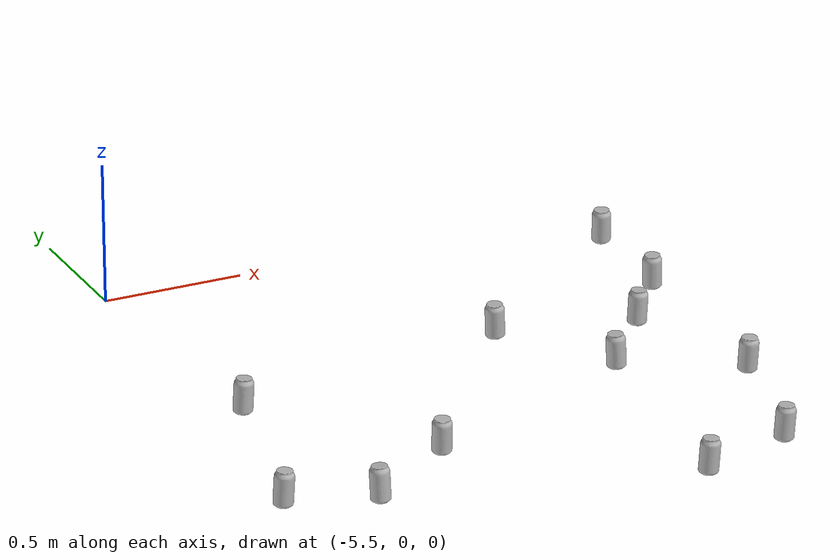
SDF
<sdf version="1.6">
 <world name="default">
  <model name="coke_can77">
   <link name="link">
    <inertial>
     <pose>0 0 0.06 0 -0 0</pose>
     <mass>0.39</mass>
     <inertia>
      <ixx>0.00055575</ixx>
      <ixy>0</ixy>
      <ixz>0</ixz>
      <iyy>0.00055575</iyy>
      <iyz>0</iyz>
      <izz>0.0001755</izz>
     </inertia>
    </inertial>
    <collision name="collision">
     <pose>0.003937 0.004724 -0.18 0 -0 0</pose>
     <geometry><mesh><uri>model://coke_can/meshes/coke_can.dae</uri></mesh></geometry>
     <surface>
      <friction><ode><mu>1</mu><mu2>1</mu2></ode></friction>
      <contact>
       <ode><kp>1e+07</kp><kd>1</kd><min_depth>0.001</min_depth><max_vel>0.1</max_vel></ode>
       <collide_bitmask>256</collide_bitmask>
      </contact>
     </surface>
    </collision>
    <visual name="visual">
     <pose>0.003937 0.004724 -0.18 0 -0 0</pose>
     <geometry><mesh><uri>model://coke_can/meshes/coke_can.dae</uri></mesh></geometry>
    </visual>
   </link>
   <pose>-3.95375 -1.9477 -0.002659 -0.0551 0.00775 -1.79287</pose>
  </model>
  <model name="coke_can95">
   <link name="link">
    <inertial>
     <pose>0 0 0.06 0 -0 0</pose>
     <mass>0.39</mass>
     <inertia>
      <ixx>0.00055575</ixx>
      <ixy>0</ixy>
      <ixz>0</ixz>
      <iyy>0.00055575</iyy>
      <iyz>0</iyz>
      <izz>0.0001755</izz>
     </inertia>
    </inertial>
    <collision name="collision">
     <pose>0.003937 0.004724 -0.18 0 -0 0</pose>
     <geometry><mesh><uri>model://coke_can/meshes/coke_can.dae</uri></mesh></geometry>
     <surface>
      <friction><ode><mu>1</mu><mu2>1</mu2></ode></friction>
      <contact>
       <ode><kp>1e+07</kp><kd>1</kd><min_depth>0.001</min_depth><max_vel>0.1</max_vel></ode>
       <collide_bitmask>256</collide_bitmask>
      </contact>
     </surface>
    </collision>
    <visual name="visual">
     <pose>0.003937 0.004724 -0.18 0 -0 0</pose>
     <geometry><mesh><uri>model://coke_can/meshes/coke_can.dae</uri></mesh></geometry>
    </visual>
   </link>
   <pose>-3.95635 -0.945213 -0.002659 -0.05513 0.007728 -1.19313</pose>
  </model>
  <model name="coke_can151">
   <link name="link">
    <inertial>
     <pose>0 0 0.06 0 -0 0</pose>
     <mass>0.39</mass>
     <inertia>
      <ixx>0.00055575</ixx>
      <ixy>0</ixy>
      <ixz>0</ixz>
      <iyy>0.00055575</iyy>
      <iyz>0</iyz>
      <izz>0.0001755</izz>
     </inertia>
    </inertial>
    <collision name="collision">
     <pose>0.003937 0.004724 -0.18 0 -0 0</pose>
     <geometry><mesh><uri>model://coke_can/meshes/coke_can.dae</uri></mesh></geometry>
     <surface>
      <friction><ode><mu>1</mu><mu2>1</mu2></ode></friction>
      <contact>
       <ode><kp>1e+07</kp><kd>1</kd><min_depth>0.001</min_depth><max_vel>0.1</max_vel></ode>
       <collide_bitmask>256</collide_bitmask>
      </contact>
     </surface>
    </collision>
    <visual name="visual">
     <pose>0.003937 0.004724 -0.18 0 -0 0</pose>
     <geometry><mesh><uri>model://coke_can/meshes/coke_can.dae</uri></mesh></geometry>
    </visual>
   </link>
   <pose>-5.60588 -1.68511 -0.002659 -0.055097 0.007752 -1.87692</pose>
  </model>
  <model name="coke_can315">
   <link name="link">
    <inertial>
     <pose>0 0 0.06 0 -0 0</pose>
     <mass>0.39</mass>
     <inertia>
      <ixx>0.00055575</ixx>
      <ixy>0</ixy>
      <ixz>0</ixz>
      <iyy>0.00055575</iyy>
      <iyz>0</iyz>
      <izz>0.0001755</izz>
     </inertia>
    </inertial>
    <collision name="collision">
     <pose>0.003937 0.004724 -0.18 0 -0 0</pose>
     <geometry><mesh><uri>model://coke_can/meshes/coke_can.dae</uri></mesh></geometry>
     <surface>
      <friction><ode><mu>1</mu><mu2>1</mu2></ode></friction>
      <contact>
       <ode><kp>1e+07</kp><kd>1</kd><min_depth>0.001</min_depth><max_vel>0.1</max_vel></ode>
       <collide_bitmask>256</collide_bitmask>
      </contact>
     </surface>
    </collision>
    <visual name="visual">
     <pose>0.003937 0.004724 -0.18 0 -0 0</pose>
     <geometry><mesh><uri>model://coke_can/meshes/coke_can.dae</uri></mesh></geometry>
    </visual>
   </link>
   <pose>-5.3153 -1.78877 -0.002659 -0.055107 0.007745 0.767916</pose>
  </model>
  <model name="coke_can325">
   <link name="link">
    <inertial>
     <pose>0 0 0.06 0 -0 0</pose>
     <mass>0.39</mass>
     <inertia>
      <ixx>0.00055575</ixx>
      <ixy>0</ixy>
      <ixz>0</ixz>
      <iyy>0.00055575</iyy>
      <iyz>0</iyz>
      <izz>0.0001755</izz>
     </inertia>
    </inertial>
    <collision name="collision">
     <pose>0.003937 0.004724 -0.18 0 -0 0</pose>
     <geometry><mesh><uri>model://coke_can/meshes/coke_can.dae</uri></mesh></geometry>
     <surface>
      <friction><ode><mu>1</mu><mu2>1</mu2></ode></friction>
      <contact>
       <ode><kp>1e+07</kp><kd>1</kd><min_depth>0.001</min_depth><max_vel>0.1</max_vel></ode>
       <collide_bitmask>256</collide_bitmask>
      </contact>
     </surface>
    </collision>
    <visual name="visual">
     <pose>0.003937 0.004724 -0.18 0 -0 0</pose>
     <geometry><mesh><uri>model://coke_can/meshes/coke_can.dae</uri></mesh></geometry>
    </visual>
   </link>
   <pose>-5.44058 -1.00856 -0.002659 -0.055127 0.007732 -1.43768</pose>
  </model>
  <model name="coke_can385">
   <link name="link">
    <inertial>
     <pose>0 0 0.06 0 -0 0</pose>
     <mass>0.39</mass>
     <inertia>
      <ixx>0.00055575</ixx>
      <ixy>0</ixy>
      <ixz>0</ixz>
      <iyy>0.00055575</iyy>
      <iyz>0</iyz>
      <izz>0.0001755</izz>
     </inertia>
    </inertial>
    <collision name="collision">
     <pose>0.003937 0.004724 -0.18 0 -0 0</pose>
     <geometry><mesh><uri>model://coke_can/meshes/coke_can.dae</uri></mesh></geometry>
     <surface>
      <friction><ode><mu>1</mu><mu2>1</mu2></ode></friction>
      <contact>
       <ode><kp>1e+07</kp><kd>1</kd><min_depth>0.001</min_depth><max_vel>0.1</max_vel></ode>
       <collide_bitmask>256</collide_bitmask>
      </contact>
     </surface>
    </collision>
    <visual name="visual">
     <pose>0.003937 0.004724 -0.18 0 -0 0</pose>
     <geometry><mesh><uri>model://coke_can/meshes/coke_can.dae</uri></mesh></geometry>
    </visual>
   </link>
   <pose>-4.29042 -2.05781 -0.002659 -0.055101 0.007749 -1.76946</pose>
  </model>
  <model name="coke_can425">
   <link name="link">
    <inertial>
     <pose>0 0 0.06 0 -0 0</pose>
     <mass>0.39</mass>
     <inertia>
      <ixx>0.00055575</ixx>
      <ixy>0</ixy>
      <ixz>0</ixz>
      <iyy>0.00055575</iyy>
      <iyz>0</iyz>
      <izz>0.0001755</izz>
     </inertia>
    </inertial>
    <collision name="collision">
     <pose>0.003937 0.004724 -0.18 0 -0 0</pose>
     <geometry><mesh><uri>model://coke_can/meshes/coke_can.dae</uri></mesh></geometry>
     <surface>
      <friction><ode><mu>1</mu><mu2>1</mu2></ode></friction>
      <contact>
       <ode><kp>1e+07</kp><kd>1</kd><min_depth>0.001</min_depth><max_vel>0.1</max_vel></ode>
       <collide_bitmask>256</collide_bitmask>
      </contact>
     </surface>
    </collision>
    <visual name="visual">
     <pose>0.003937 0.004724 -0.18 0 -0 0</pose>
     <geometry><mesh><uri>model://coke_can/meshes/coke_can.dae</uri></mesh></geometry>
    </visual>
   </link>
   <pose>-3.74371 -0.278277 -0.002659 -0.055087 0.007758 2.79999</pose>
  </model>
  <model name="coke_can524">
   <link name="link">
    <inertial>
     <pose>0 0 0.06 0 -0 0</pose>
     <mass>0.39</mass>
     <inertia>
      <ixx>0.00055575</ixx>
      <ixy>0</ixy>
      <ixz>0</ixz>
      <iyy>0.00055575</iyy>
      <iyz>0</iyz>
      <izz>0.0001755</izz>
     </inertia>
    </inertial>
    <collision name="collision">
     <pose>0.003937 0.004724 -0.18 0 -0 0</pose>
     <geometry><mesh><uri>model://coke_can/meshes/coke_can.dae</uri></mesh></geometry>
     <surface>
      <friction><ode><mu>1</mu><mu2>1</mu2></ode></friction>
      <contact>
       <ode><kp>1e+07</kp><kd>1</kd><min_depth>0.001</min_depth><max_vel>0.1</max_vel></ode>
       <collide_bitmask>256</collide_bitmask>
      </contact>
     </surface>
    </collision>
    <visual name="visual">
     <pose>0.003937 0.004724 -0.18 0 -0 0</pose>
     <geometry><mesh><uri>model://coke_can/meshes/coke_can.dae</uri></mesh></geometry>
    </visual>
   </link>
   <pose>-4.98907 -1.55652 -0.002659 -0.055108 0.007745 3.0601</pose>
  </model>
  <model name="coke_can587">
   <link name="link">
    <inertial>
     <pose>0 0 0.06 0 -0 0</pose>
     <mass>0.39</mass>
     <inertia>
      <ixx>0.00055575</ixx>
      <ixy>0</ixy>
      <ixz>0</ixz>
      <iyy>0.00055575</iyy>
      <iyz>0</iyz>
      <izz>0.0001755</izz>
     </inertia>
    </inertial>
    <collision name="collision">
     <pose>0.003937 0.004724 -0.18 0 -0 0</pose>
     <geometry><mesh><uri>model://coke_can/meshes/coke_can.dae</uri></mesh></geometry>
     <surface>
      <friction><ode><mu>1</mu><mu2>1</mu2></ode></friction>
      <contact>
       <ode><kp>1e+07</kp><kd>1</kd><min_depth>0.001</min_depth><max_vel>0.1</max_vel></ode>
       <collide_bitmask>256</collide_bitmask>
      </contact>
     </surface>
    </collision>
    <visual name="visual">
     <pose>0.003937 0.004724 -0.18 0 -0 0</pose>
     <geometry><mesh><uri>model://coke_can/meshes/coke_can.dae</uri></mesh></geometry>
    </visual>
   </link>
   <pose>-3.80392 -1.43548 -0.002659 -0.055113 0.00774 -2.44594</pose>
  </model>
  <model name="coke_can766">
   <link name="link">
    <inertial>
     <pose>0 0 0.06 0 -0 0</pose>
     <mass>0.39</mass>
     <inertia>
      <ixx>0.00055575</ixx>
      <ixy>0</ixy>
      <ixz>0</ixz>
      <iyy>0.00055575</iyy>
      <iyz>0</iyz>
      <izz>0.0001755</izz>
     </inertia>
    </inertial>
    <collision name="collision">
     <pose>0.003937 0.004724 -0.18 0 -0 0</pose>
     <geometry><mesh><uri>model://coke_can/meshes/coke_can.dae</uri></mesh></geometry>
     <surface>
      <friction><ode><mu>1</mu><mu2>1</mu2></ode></friction>
      <contact>
       <ode><kp>1e+07</kp><kd>1</kd><min_depth>0.001</min_depth><max_vel>0.1</max_vel></ode>
       <collide_bitmask>256</collide_bitmask>
      </contact>
     </surface>
    </collision>
    <visual name="visual">
     <pose>0.003937 0.004724 -0.18 0 -0 0</pose>
     <geometry><mesh><uri>model://coke_can/meshes/coke_can.dae</uri></mesh></geometry>
    </visual>
   </link>
   <pose>-3.76792 -0.700042 -0.002658 -0.055082 0.007762 2.56554</pose>
  </model>
  <model name="coke_can828">
   <link name="link">
    <inertial>
     <pose>0 0 0.06 0 -0 0</pose>
     <mass>0.39</mass>
     <inertia>
      <ixx>0.00055575</ixx>
      <ixy>0</ixy>
      <ixz>0</ixz>
      <iyy>0.00055575</iyy>
      <iyz>0</iyz>
      <izz>0.0001755</izz>
     </inertia>
    </inertial>
    <collision name="collision">
     <pose>0.003937 0.004724 -0.18 0 -0 0</pose>
     <geometry><mesh><uri>model://coke_can/meshes/coke_can.dae</uri></mesh></geometry>
     <surface>
      <friction><ode><mu>1</mu><mu2>1</mu2></ode></friction>
      <contact>
       <ode><kp>1e+07</kp><kd>1</kd><min_depth>0.001</min_depth><max_vel>0.1</max_vel></ode>
       <collide_bitmask>256</collide_bitmask>
      </contact>
     </surface>
    </collision>
    <visual name="visual">
     <pose>0.003937 0.004724 -0.18 0 -0 0</pose>
     <geometry><mesh><uri>model://coke_can/meshes/coke_can.dae</uri></mesh></geometry>
    </visual>
   </link>
   <pose>-4.43558 -0.832876 -0.002659 -0.055094 0.007753 2.36486</pose>
  </model>
  <model name="coke_can940">
   <link name="link">
    <inertial>
     <pose>0 0 0.06 0 -0 0</pose>
     <mass>0.39</mass>
     <inertia>
      <ixx>0.00055575</ixx>
      <ixy>0</ixy>
      <ixz>0</ixz>
      <iyy>0.00055575</iyy>
      <iyz>0</iyz>
      <izz>0.0001755</izz>
     </inertia>
    </inertial>
    <collision name="collision">
     <pose>0.003937 0.004724 -0.18 0 -0 0</pose>
     <geometry><mesh><uri>model://coke_can/meshes/coke_can.dae</uri></mesh></geometry>
     <surface>
      <friction><ode><mu>1</mu><mu2>1</mu2></ode></friction>
      <contact>
       <ode><kp>1e+07</kp><kd>1</kd><min_depth>0.001</min_depth><max_vel>0.1</max_vel></ode>
       <collide_bitmask>256</collide_bitmask>
      </contact>
     </surface>
    </collision>
    <visual name="visual">
     <pose>0.003937 0.004724 -0.18 0 -0 0</pose>
     <geometry><mesh><uri>model://coke_can/meshes/coke_can.dae</uri></mesh></geometry>
    </visual>
   </link>
   <pose>-4.18081 -1.22306 -0.002659 -0.055133 0.007727 1.78768</pose>
  </model>
 </world>
</sdf>
